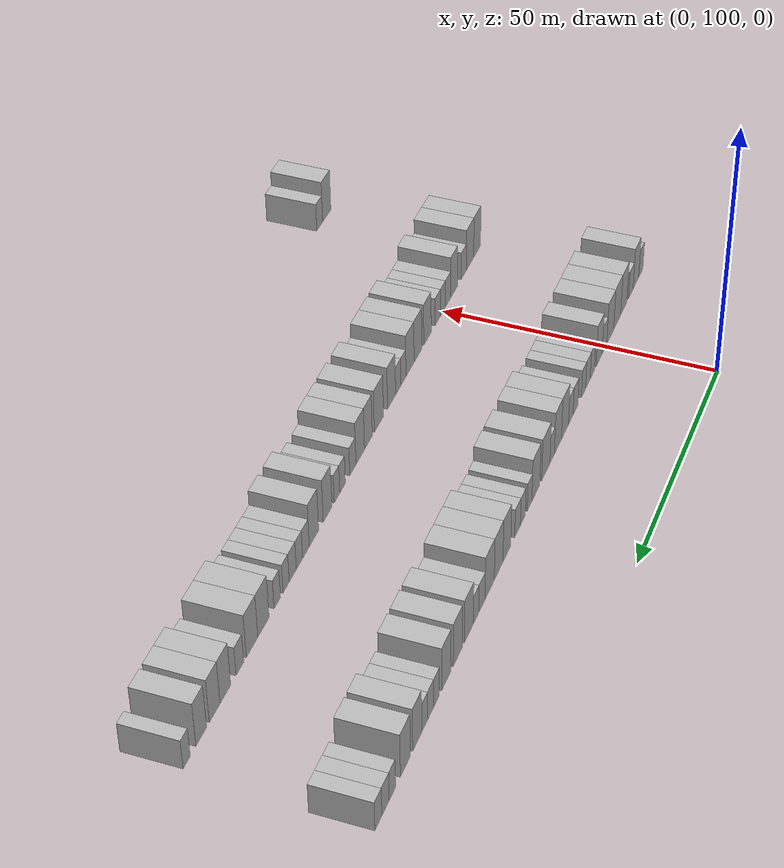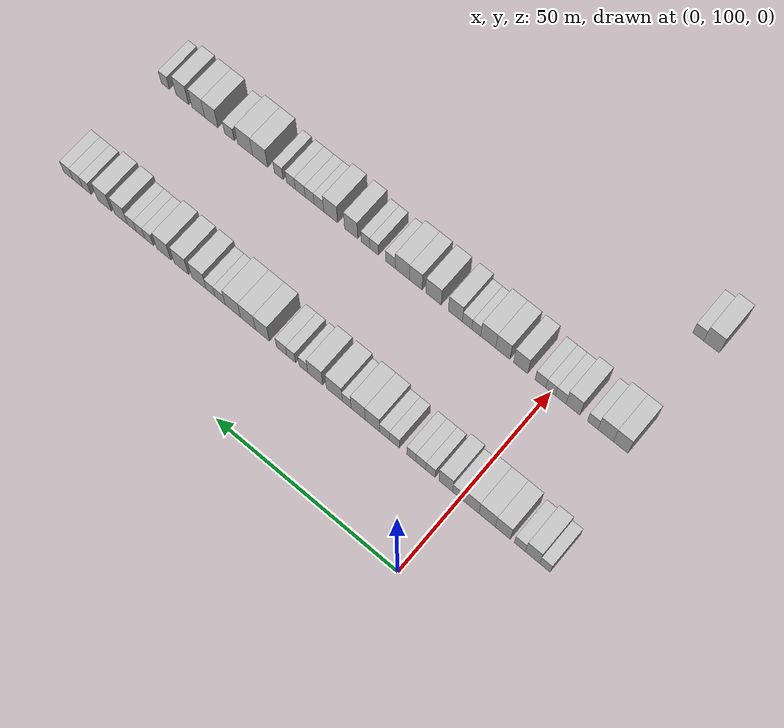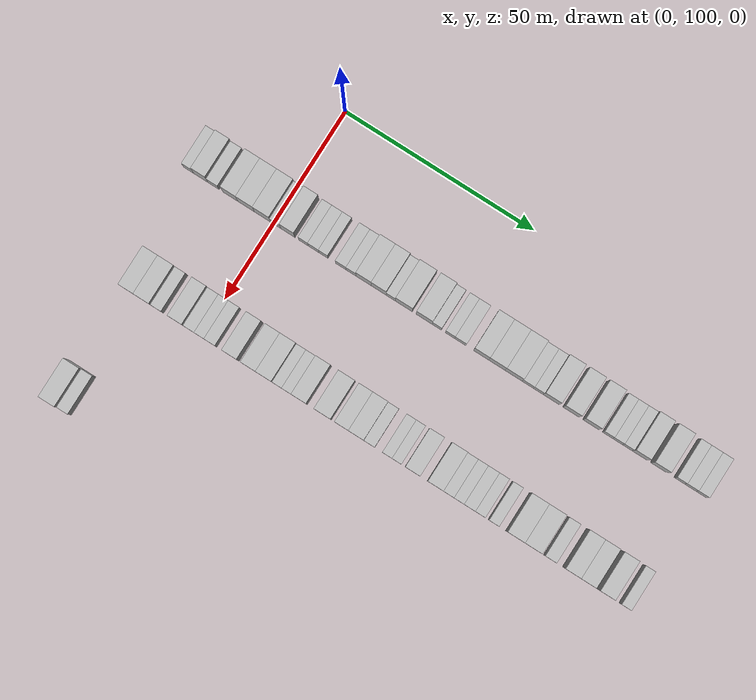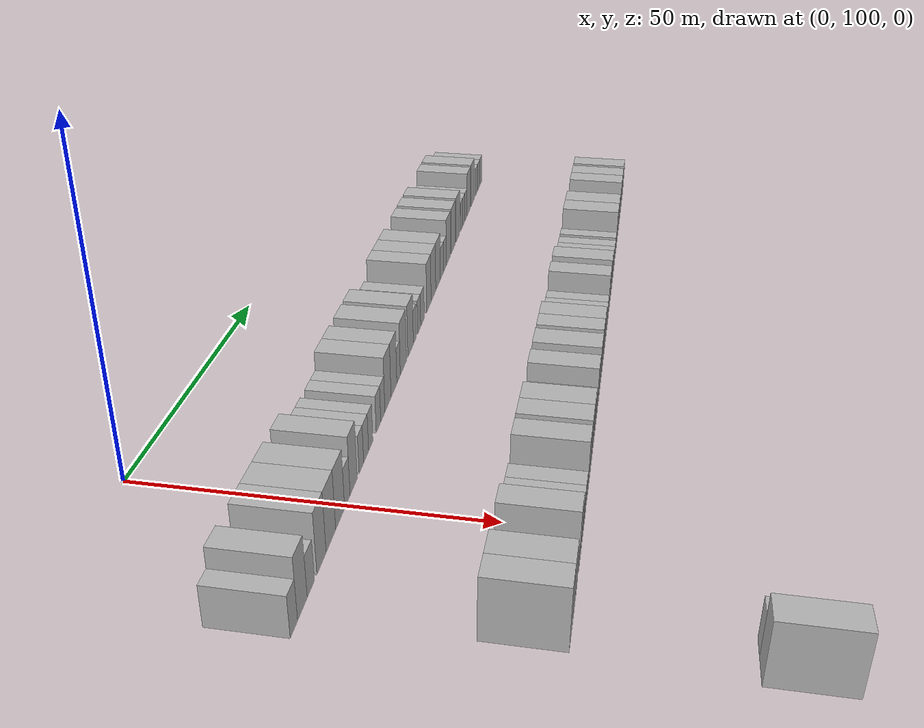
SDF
<sdf version="1.6">
 <world name="default">
  <model name="building_136">
   <static>1</static>
   <pose>25.0000 77.5912 0 0.000000 0.000000 0.000000</pose>
   <link name="link">
    <pose>0 0 3.00 0 0 0</pose>
    <collision name="collision"><geometry><box><size>10.0000 2.7581 6.0000</size></box></geometry></collision>
    <visual name="visual">
     <cast_shadows>0</cast_shadows>
     <geometry><box><size>10.0000 2.7581 6.0000</size></box></geometry>
     <material>
      <script>
       <uri>model://HANNAS_wall/materials/scripts</uri>
       <uri>model://HANNAS_wall/materials/textures</uri>
       <name>vrc/HANNAS_wall</name>
      </script>
     </material>
    </visual>
   </link>
  </model>
  <model name="building_137">
   <static>1</static>
   <pose>25.0000 80.8416 0 0.000000 0.000000 0.000000</pose>
   <link name="link">
    <pose>0 0 4.50 0 0 0</pose>
    <collision name="collision"><geometry><box><size>10.0000 3.7425 9.0000</size></box></geometry></collision>
    <visual name="visual">
     <cast_shadows>0</cast_shadows>
     <geometry><box><size>10.0000 3.7425 9.0000</size></box></geometry>
     <material>
      <script>
       <uri>model://HANNAS_wall/materials/scripts</uri>
       <uri>model://HANNAS_wall/materials/textures</uri>
       <name>vrc/HANNAS_wall</name>
      </script>
     </material>
    </visual>
   </link>
  </model>
  <model name="building_138">
   <static>1</static>
   <pose>25.0000 84.1887 0 0.000000 0.000000 0.000000</pose>
   <link name="link">
    <pose>0 0 3.00 0 0 0</pose>
    <collision name="collision"><geometry><box><size>10.0000 2.9517 6.0000</size></box></geometry></collision>
    <visual name="visual">
     <cast_shadows>0</cast_shadows>
     <geometry><box><size>10.0000 2.9517 6.0000</size></box></geometry>
     <material>
      <script>
       <uri>model://HANNAS_wall/materials/scripts</uri>
       <uri>model://HANNAS_wall/materials/textures</uri>
       <name>vrc/HANNAS_wall</name>
      </script>
     </material>
    </visual>
   </link>
  </model>
  <model name="building_139">
   <static>1</static>
   <pose>25.0000 88.6611 0 0.000000 0.000000 0.000000</pose>
   <link name="link">
    <pose>0 0 4.50 0 0 0</pose>
    <collision name="collision"><geometry><box><size>10.0000 3.9932 9.0000</size></box></geometry></collision>
    <visual name="visual">
     <cast_shadows>0</cast_shadows>
     <geometry><box><size>10.0000 3.9932 9.0000</size></box></geometry>
     <material>
      <script>
       <uri>model://HANNAS_wall/materials/scripts</uri>
       <uri>model://HANNAS_wall/materials/textures</uri>
       <name>vrc/HANNAS_wall</name>
      </script>
     </material>
    </visual>
   </link>
  </model>
  <model name="building_140">
   <static>1</static>
   <pose>25.0000 92.8406 0 0.000000 0.000000 0.000000</pose>
   <link name="link">
    <pose>0 0 4.50 0 0 0</pose>
    <collision name="collision"><geometry><box><size>10.0000 4.3657 9.0000</size></box></geometry></collision>
    <visual name="visual">
     <cast_shadows>0</cast_shadows>
     <geometry><box><size>10.0000 4.3657 9.0000</size></box></geometry>
     <material>
      <script>
       <uri>model://HANNAS_wall/materials/scripts</uri>
       <uri>model://HANNAS_wall/materials/textures</uri>
       <name>vrc/HANNAS_wall</name>
      </script>
     </material>
    </visual>
   </link>
  </model>
  <model name="building_141">
   <static>1</static>
   <pose>25.0000 97.1631 0 0.000000 0.000000 0.000000</pose>
   <link name="link">
    <pose>0 0 4.50 0 0 0</pose>
    <collision name="collision"><geometry><box><size>10.0000 4.2792 9.0000</size></box></geometry></collision>
    <visual name="visual">
     <cast_shadows>0</cast_shadows>
     <geometry><box><size>10.0000 4.2792 9.0000</size></box></geometry>
     <material>
      <script>
       <uri>model://HANNAS_wall/materials/scripts</uri>
       <uri>model://HANNAS_wall/materials/textures</uri>
       <name>vrc/HANNAS_wall</name>
      </script>
     </material>
    </visual>
   </link>
  </model>
  <model name="building_142">
   <static>1</static>
   <pose>25.0000 100.6852 0 0.000000 0.000000 0.000000</pose>
   <link name="link">
    <pose>0 0 3.00 0 0 0</pose>
    <collision name="collision"><geometry><box><size>10.0000 2.7650 6.0000</size></box></geometry></collision>
    <visual name="visual">
     <cast_shadows>0</cast_shadows>
     <geometry><box><size>10.0000 2.7650 6.0000</size></box></geometry>
     <material>
      <script>
       <uri>model://HANNAS_wall/materials/scripts</uri>
       <uri>model://HANNAS_wall/materials/textures</uri>
       <name>vrc/HANNAS_wall</name>
      </script>
     </material>
    </visual>
   </link>
  </model>
  <model name="building_143">
   <static>1</static>
   <pose>25.0000 103.9234 0 0.000000 0.000000 0.000000</pose>
   <link name="link">
    <pose>0 0 4.50 0 0 0</pose>
    <collision name="collision"><geometry><box><size>10.0000 3.7115 9.0000</size></box></geometry></collision>
    <visual name="visual">
     <cast_shadows>0</cast_shadows>
     <geometry><box><size>10.0000 3.7115 9.0000</size></box></geometry>
     <material>
      <script>
       <uri>model://HANNAS_wall/materials/scripts</uri>
       <uri>model://HANNAS_wall/materials/textures</uri>
       <name>vrc/HANNAS_wall</name>
      </script>
     </material>
    </visual>
   </link>
  </model>
  <model name="building_144">
   <static>1</static>
   <pose>25.0000 108.0276 0 0.000000 0.000000 0.000000</pose>
   <link name="link">
    <pose>0 0 3.00 0 0 0</pose>
    <collision name="collision"><geometry><box><size>10.0000 2.4969 6.0000</size></box></geometry></collision>
    <visual name="visual">
     <cast_shadows>0</cast_shadows>
     <geometry><box><size>10.0000 2.4969 6.0000</size></box></geometry>
     <material>
      <script>
       <uri>model://HANNAS_wall/materials/scripts</uri>
       <uri>model://HANNAS_wall/materials/textures</uri>
       <name>vrc/HANNAS_wall</name>
      </script>
     </material>
    </visual>
   </link>
  </model>
  <model name="building_145">
   <static>1</static>
   <pose>25.0000 110.6814 0 0.000000 0.000000 0.000000</pose>
   <link name="link">
    <pose>0 0 3.00 0 0 0</pose>
    <collision name="collision"><geometry><box><size>10.0000 2.8107 6.0000</size></box></geometry></collision>
    <visual name="visual">
     <cast_shadows>0</cast_shadows>
     <geometry><box><size>10.0000 2.8107 6.0000</size></box></geometry>
     <material>
      <script>
       <uri>model://HANNAS_wall/materials/scripts</uri>
       <uri>model://HANNAS_wall/materials/textures</uri>
       <name>vrc/HANNAS_wall</name>
      </script>
     </material>
    </visual>
   </link>
  </model>
  <model name="building_146">
   <static>1</static>
   <pose>25.0000 113.3016 0 0.000000 0.000000 0.000000</pose>
   <link name="link">
    <pose>0 0 3.00 0 0 0</pose>
    <collision name="collision"><geometry><box><size>10.0000 2.4296 6.0000</size></box></geometry></collision>
    <visual name="visual">
     <cast_shadows>0</cast_shadows>
     <geometry><box><size>10.0000 2.4296 6.0000</size></box></geometry>
     <material>
      <script>
       <uri>model://HANNAS_wall/materials/scripts</uri>
       <uri>model://HANNAS_wall/materials/textures</uri>
       <name>vrc/HANNAS_wall</name>
      </script>
     </material>
    </visual>
   </link>
  </model>
  <model name="building_147">
   <static>1</static>
   <pose>25.0000 117.9025 0 0.000000 0.000000 0.000000</pose>
   <link name="link">
    <pose>0 0 3.00 0 0 0</pose>
    <collision name="collision"><geometry><box><size>10.0000 2.7722 6.0000</size></box></geometry></collision>
    <visual name="visual">
     <cast_shadows>0</cast_shadows>
     <geometry><box><size>10.0000 2.7722 6.0000</size></box></geometry>
     <material>
      <script>
       <uri>model://HANNAS_wall/materials/scripts</uri>
       <uri>model://HANNAS_wall/materials/textures</uri>
       <name>vrc/HANNAS_wall</name>
      </script>
     </material>
    </visual>
   </link>
  </model>
  <model name="building_148">
   <static>1</static>
   <pose>25.0000 120.6089 0 0.000000 0.000000 0.000000</pose>
   <link name="link">
    <pose>0 0 3.00 0 0 0</pose>
    <collision name="collision"><geometry><box><size>10.0000 2.6406 6.0000</size></box></geometry></collision>
    <visual name="visual">
     <cast_shadows>0</cast_shadows>
     <geometry><box><size>10.0000 2.6406 6.0000</size></box></geometry>
     <material>
      <script>
       <uri>model://HANNAS_wall/materials/scripts</uri>
       <uri>model://HANNAS_wall/materials/textures</uri>
       <name>vrc/HANNAS_wall</name>
      </script>
     </material>
    </visual>
   </link>
  </model>
  <model name="building_149">
   <static>1</static>
   <pose>25.0000 123.9253 0 0.000000 0.000000 0.000000</pose>
   <link name="link">
    <pose>0 0 4.50 0 0 0</pose>
    <collision name="collision"><geometry><box><size>10.0000 3.9921 9.0000</size></box></geometry></collision>
    <visual name="visual">
     <cast_shadows>0</cast_shadows>
     <geometry><box><size>10.0000 3.9921 9.0000</size></box></geometry>
     <material>
      <script>
       <uri>model://HANNAS_wall/materials/scripts</uri>
       <uri>model://HANNAS_wall/materials/textures</uri>
       <name>vrc/HANNAS_wall</name>
      </script>
     </material>
    </visual>
   </link>
  </model>
  <model name="building_150">
   <static>1</static>
   <pose>25.0000 127.8792 0 0.000000 0.000000 0.000000</pose>
   <link name="link">
    <pose>0 0 4.50 0 0 0</pose>
    <collision name="collision"><geometry><box><size>10.0000 3.9158 9.0000</size></box></geometry></collision>
    <visual name="visual">
     <cast_shadows>0</cast_shadows>
     <geometry><box><size>10.0000 3.9158 9.0000</size></box></geometry>
     <material>
      <script>
       <uri>model://HANNAS_wall/materials/scripts</uri>
       <uri>model://HANNAS_wall/materials/textures</uri>
       <name>vrc/HANNAS_wall</name>
      </script>
     </material>
    </visual>
   </link>
  </model>
  <model name="building_151">
   <static>1</static>
   <pose>25.0000 131.0568 0 0.000000 0.000000 0.000000</pose>
   <link name="link">
    <pose>0 0 3.00 0 0 0</pose>
    <collision name="collision"><geometry><box><size>10.0000 2.4392 6.0000</size></box></geometry></collision>
    <visual name="visual">
     <cast_shadows>0</cast_shadows>
     <geometry><box><size>10.0000 2.4392 6.0000</size></box></geometry>
     <material>
      <script>
       <uri>model://HANNAS_wall/materials/scripts</uri>
       <uri>model://HANNAS_wall/materials/textures</uri>
       <name>vrc/HANNAS_wall</name>
      </script>
     </material>
    </visual>
   </link>
  </model>
  <model name="building_152">
   <static>1</static>
   <pose>25.0000 134.5173 0 0.000000 0.000000 0.000000</pose>
   <link name="link">
    <pose>0 0 4.50 0 0 0</pose>
    <collision name="collision"><geometry><box><size>10.0000 4.4818 9.0000</size></box></geometry></collision>
    <visual name="visual">
     <cast_shadows>0</cast_shadows>
     <geometry><box><size>10.0000 4.4818 9.0000</size></box></geometry>
     <material>
      <script>
       <uri>model://HANNAS_wall/materials/scripts</uri>
       <uri>model://HANNAS_wall/materials/textures</uri>
       <name>vrc/HANNAS_wall</name>
      </script>
     </material>
    </visual>
   </link>
  </model>
  <model name="building_153">
   <static>1</static>
   <pose>25.0000 139.8639 0 0.000000 0.000000 0.000000</pose>
   <link name="link">
    <pose>0 0 4.50 0 0 0</pose>
    <collision name="collision"><geometry><box><size>10.0000 4.2115 9.0000</size></box></geometry></collision>
    <visual name="visual">
     <cast_shadows>0</cast_shadows>
     <geometry><box><size>10.0000 4.2115 9.0000</size></box></geometry>
     <material>
      <script>
       <uri>model://HANNAS_wall/materials/scripts</uri>
       <uri>model://HANNAS_wall/materials/textures</uri>
       <name>vrc/HANNAS_wall</name>
      </script>
     </material>
    </visual>
   </link>
  </model>
  <model name="building_154">
   <static>1</static>
   <pose>25.0000 143.1893 0 0.000000 0.000000 0.000000</pose>
   <link name="link">
    <pose>0 0 3.00 0 0 0</pose>
    <collision name="collision"><geometry><box><size>10.0000 2.4393 6.0000</size></box></geometry></collision>
    <visual name="visual">
     <cast_shadows>0</cast_shadows>
     <geometry><box><size>10.0000 2.4393 6.0000</size></box></geometry>
     <material>
      <script>
       <uri>model://HANNAS_wall/materials/scripts</uri>
       <uri>model://HANNAS_wall/materials/textures</uri>
       <name>vrc/HANNAS_wall</name>
      </script>
     </material>
    </visual>
   </link>
  </model>
  <model name="building_155">
   <static>1</static>
   <pose>25.0000 146.6514 0 0.000000 0.000000 0.000000</pose>
   <link name="link">
    <pose>0 0 3.00 0 0 0</pose>
    <collision name="collision"><geometry><box><size>10.0000 2.4848 6.0000</size></box></geometry></collision>
    <visual name="visual">
     <cast_shadows>0</cast_shadows>
     <geometry><box><size>10.0000 2.4848 6.0000</size></box></geometry>
     <material>
      <script>
       <uri>model://HANNAS_wall/materials/scripts</uri>
       <uri>model://HANNAS_wall/materials/textures</uri>
       <name>vrc/HANNAS_wall</name>
      </script>
     </material>
    </visual>
   </link>
  </model>
  <model name="building_156">
   <static>1</static>
   <pose>25.0000 149.3820 0 0.000000 0.000000 0.000000</pose>
   <link name="link">
    <pose>0 0 3.00 0 0 0</pose>
    <collision name="collision"><geometry><box><size>10.0000 2.9763 6.0000</size></box></geometry></collision>
    <visual name="visual">
     <cast_shadows>0</cast_shadows>
     <geometry><box><size>10.0000 2.9763 6.0000</size></box></geometry>
     <material>
      <script>
       <uri>model://HANNAS_wall/materials/scripts</uri>
       <uri>model://HANNAS_wall/materials/textures</uri>
       <name>vrc/HANNAS_wall</name>
      </script>
     </material>
    </visual>
   </link>
  </model>
  <model name="building_157">
   <static>1</static>
   <pose>25.0000 154.8420 0 0.000000 0.000000 0.000000</pose>
   <link name="link">
    <pose>0 0 4.50 0 0 0</pose>
    <collision name="collision"><geometry><box><size>10.0000 3.9438 9.0000</size></box></geometry></collision>
    <visual name="visual">
     <cast_shadows>0</cast_shadows>
     <geometry><box><size>10.0000 3.9438 9.0000</size></box></geometry>
     <material>
      <script>
       <uri>model://HANNAS_wall/materials/scripts</uri>
       <uri>model://HANNAS_wall/materials/textures</uri>
       <name>vrc/HANNAS_wall</name>
      </script>
     </material>
    </visual>
   </link>
  </model>
  <model name="building_158">
   <static>1</static>
   <pose>25.0000 158.9599 0 0.000000 0.000000 0.000000</pose>
   <link name="link">
    <pose>0 0 4.50 0 0 0</pose>
    <collision name="collision"><geometry><box><size>10.0000 4.2918 9.0000</size></box></geometry></collision>
    <visual name="visual">
     <cast_shadows>0</cast_shadows>
     <geometry><box><size>10.0000 4.2918 9.0000</size></box></geometry>
     <material>
      <script>
       <uri>model://HANNAS_wall/materials/scripts</uri>
       <uri>model://HANNAS_wall/materials/textures</uri>
       <name>vrc/HANNAS_wall</name>
      </script>
     </material>
    </visual>
   </link>
  </model>
  <model name="building_159">
   <static>1</static>
   <pose>25.0000 163.3446 0 0.000000 0.000000 0.000000</pose>
   <link name="link">
    <pose>0 0 4.50 0 0 0</pose>
    <collision name="collision"><geometry><box><size>10.0000 4.4777 9.0000</size></box></geometry></collision>
    <visual name="visual">
     <cast_shadows>0</cast_shadows>
     <geometry><box><size>10.0000 4.4777 9.0000</size></box></geometry>
     <material>
      <script>
       <uri>model://HANNAS_wall/materials/scripts</uri>
       <uri>model://HANNAS_wall/materials/textures</uri>
       <name>vrc/HANNAS_wall</name>
      </script>
     </material>
    </visual>
   </link>
  </model>
  <model name="building_160">
   <static>1</static>
   <pose>25.0000 167.0753 0 0.000000 0.000000 0.000000</pose>
   <link name="link">
    <pose>0 0 3.00 0 0 0</pose>
    <collision name="collision"><geometry><box><size>10.0000 2.9837 6.0000</size></box></geometry></collision>
    <visual name="visual">
     <cast_shadows>0</cast_shadows>
     <geometry><box><size>10.0000 2.9837 6.0000</size></box></geometry>
     <material>
      <script>
       <uri>model://HANNAS_wall/materials/scripts</uri>
       <uri>model://HANNAS_wall/materials/textures</uri>
       <name>vrc/HANNAS_wall</name>
      </script>
     </material>
    </visual>
   </link>
  </model>
  <model name="building_161">
   <static>1</static>
   <pose>25.0000 169.8579 0 0.000000 0.000000 0.000000</pose>
   <link name="link">
    <pose>0 0 3.00 0 0 0</pose>
    <collision name="collision"><geometry><box><size>10.0000 2.5815 6.0000</size></box></geometry></collision>
    <visual name="visual">
     <cast_shadows>0</cast_shadows>
     <geometry><box><size>10.0000 2.5815 6.0000</size></box></geometry>
     <material>
      <script>
       <uri>model://HANNAS_wall/materials/scripts</uri>
       <uri>model://HANNAS_wall/materials/textures</uri>
       <name>vrc/HANNAS_wall</name>
      </script>
     </material>
    </visual>
   </link>
  </model>
  <model name="building_162">
   <static>1</static>
   <pose>25.0000 173.2406 0 0.000000 0.000000 0.000000</pose>
   <link name="link">
    <pose>0 0 4.50 0 0 0</pose>
    <collision name="collision"><geometry><box><size>10.0000 4.1837 9.0000</size></box></geometry></collision>
    <visual name="visual">
     <cast_shadows>0</cast_shadows>
     <geometry><box><size>10.0000 4.1837 9.0000</size></box></geometry>
     <material>
      <script>
       <uri>model://HANNAS_wall/materials/scripts</uri>
       <uri>model://HANNAS_wall/materials/textures</uri>
       <name>vrc/HANNAS_wall</name>
      </script>
     </material>
    </visual>
   </link>
  </model>
  <model name="building_163">
   <static>1</static>
   <pose>25.0000 178.4339 0 0.000000 0.000000 0.000000</pose>
   <link name="link">
    <pose>0 0 4.50 0 0 0</pose>
    <collision name="collision"><geometry><box><size>10.0000 4.2030 9.0000</size></box></geometry></collision>
    <visual name="visual">
     <cast_shadows>0</cast_shadows>
     <geometry><box><size>10.0000 4.2030 9.0000</size></box></geometry>
     <material>
      <script>
       <uri>model://HANNAS_wall/materials/scripts</uri>
       <uri>model://HANNAS_wall/materials/textures</uri>
       <name>vrc/HANNAS_wall</name>
      </script>
     </material>
    </visual>
   </link>
  </model>
  <model name="building_164">
   <static>1</static>
   <pose>25.0000 183.6283 0 0.000000 0.000000 0.000000</pose>
   <link name="link">
    <pose>0 0 4.50 0 0 0</pose>
    <collision name="collision"><geometry><box><size>10.0000 4.1857 9.0000</size></box></geometry></collision>
    <visual name="visual">
     <cast_shadows>0</cast_shadows>
     <geometry><box><size>10.0000 4.1857 9.0000</size></box></geometry>
     <material>
      <script>
       <uri>model://HANNAS_wall/materials/scripts</uri>
       <uri>model://HANNAS_wall/materials/textures</uri>
       <name>vrc/HANNAS_wall</name>
      </script>
     </material>
    </visual>
   </link>
  </model>
  <model name="building_165">
   <static>1</static>
   <pose>25.0000 187.9813 0 0.000000 0.000000 0.000000</pose>
   <link name="link">
    <pose>0 0 3.00 0 0 0</pose>
    <collision name="collision"><geometry><box><size>10.0000 2.5204 6.0000</size></box></geometry></collision>
    <visual name="visual">
     <cast_shadows>0</cast_shadows>
     <geometry><box><size>10.0000 2.5204 6.0000</size></box></geometry>
     <material>
      <script>
       <uri>model://HANNAS_wall/materials/scripts</uri>
       <uri>model://HANNAS_wall/materials/textures</uri>
       <name>vrc/HANNAS_wall</name>
      </script>
     </material>
    </visual>
   </link>
  </model>
  <model name="building_166">
   <static>1</static>
   <pose>25.0000 190.5434 0 0.000000 0.000000 0.000000</pose>
   <link name="link">
    <pose>0 0 3.00 0 0 0</pose>
    <collision name="collision"><geometry><box><size>10.0000 2.6036 6.0000</size></box></geometry></collision>
    <visual name="visual">
     <cast_shadows>0</cast_shadows>
     <geometry><box><size>10.0000 2.6036 6.0000</size></box></geometry>
     <material>
      <script>
       <uri>model://HANNAS_wall/materials/scripts</uri>
       <uri>model://HANNAS_wall/materials/textures</uri>
       <name>vrc/HANNAS_wall</name>
      </script>
     </material>
    </visual>
   </link>
  </model>
  <model name="building_167">
   <static>1</static>
   <pose>25.0000 193.1243 0 0.000000 0.000000 0.000000</pose>
   <link name="link">
    <pose>0 0 3.00 0 0 0</pose>
    <collision name="collision"><geometry><box><size>10.0000 2.5582 6.0000</size></box></geometry></collision>
    <visual name="visual">
     <cast_shadows>0</cast_shadows>
     <geometry><box><size>10.0000 2.5582 6.0000</size></box></geometry>
     <material>
      <script>
       <uri>model://HANNAS_wall/materials/scripts</uri>
       <uri>model://HANNAS_wall/materials/textures</uri>
       <name>vrc/HANNAS_wall</name>
      </script>
     </material>
    </visual>
   </link>
  </model>
  <model name="building_168">
   <static>1</static>
   <pose>25.0000 196.3502 0 0.000000 0.000000 0.000000</pose>
   <link name="link">
    <pose>0 0 4.50 0 0 0</pose>
    <collision name="collision"><geometry><box><size>10.0000 3.8935 9.0000</size></box></geometry></collision>
    <visual name="visual">
     <cast_shadows>0</cast_shadows>
     <geometry><box><size>10.0000 3.8935 9.0000</size></box></geometry>
     <material>
      <script>
       <uri>model://HANNAS_wall/materials/scripts</uri>
       <uri>model://HANNAS_wall/materials/textures</uri>
       <name>vrc/HANNAS_wall</name>
      </script>
     </material>
    </visual>
   </link>
  </model>
  <model name="building_169">
   <static>1</static>
   <pose>25.0000 201.3693 0 0.000000 0.000000 0.000000</pose>
   <link name="link">
    <pose>0 0 4.50 0 0 0</pose>
    <collision name="collision"><geometry><box><size>10.0000 4.1447 9.0000</size></box></geometry></collision>
    <visual name="visual">
     <cast_shadows>0</cast_shadows>
     <geometry><box><size>10.0000 4.1447 9.0000</size></box></geometry>
     <material>
      <script>
       <uri>model://HANNAS_wall/materials/scripts</uri>
       <uri>model://HANNAS_wall/materials/textures</uri>
       <name>vrc/HANNAS_wall</name>
      </script>
     </material>
    </visual>
   </link>
  </model>
  <model name="building_170">
   <static>1</static>
   <pose>25.0000 206.7537 0 0.000000 0.000000 0.000000</pose>
   <link name="link">
    <pose>0 0 3.00 0 0 0</pose>
    <collision name="collision"><geometry><box><size>10.0000 2.6243 6.0000</size></box></geometry></collision>
    <visual name="visual">
     <cast_shadows>0</cast_shadows>
     <geometry><box><size>10.0000 2.6243 6.0000</size></box></geometry>
     <material>
      <script>
       <uri>model://HANNAS_wall/materials/scripts</uri>
       <uri>model://HANNAS_wall/materials/textures</uri>
       <name>vrc/HANNAS_wall</name>
      </script>
     </material>
    </visual>
   </link>
  </model>
  <model name="building_171">
   <static>1</static>
   <pose>25.0000 209.5359 0 0.000000 0.000000 0.000000</pose>
   <link name="link">
    <pose>0 0 3.00 0 0 0</pose>
    <collision name="collision"><geometry><box><size>10.0000 2.9401 6.0000</size></box></geometry></collision>
    <visual name="visual">
     <cast_shadows>0</cast_shadows>
     <geometry><box><size>10.0000 2.9401 6.0000</size></box></geometry>
     <material>
      <script>
       <uri>model://HANNAS_wall/materials/scripts</uri>
       <uri>model://HANNAS_wall/materials/textures</uri>
       <name>vrc/HANNAS_wall</name>
      </script>
     </material>
    </visual>
   </link>
  </model>
  <model name="building_172">
   <static>1</static>
   <pose>25.0000 212.4015 0 0.000000 0.000000 0.000000</pose>
   <link name="link">
    <pose>0 0 3.00 0 0 0</pose>
    <collision name="collision"><geometry><box><size>10.0000 2.7912 6.0000</size></box></geometry></collision>
    <visual name="visual">
     <cast_shadows>0</cast_shadows>
     <geometry><box><size>10.0000 2.7912 6.0000</size></box></geometry>
     <material>
      <script>
       <uri>model://HANNAS_wall/materials/scripts</uri>
       <uri>model://HANNAS_wall/materials/textures</uri>
       <name>vrc/HANNAS_wall</name>
      </script>
     </material>
    </visual>
   </link>
  </model>
  <model name="building_369">
   <static>1</static>
   <pose>55.0000 81.3172 0 0.000000 0.000000 0.000000</pose>
   <link name="link">
    <pose>0 0 4.50 0 0 0</pose>
    <collision name="collision"><geometry><box><size>10.0000 3.9108 9.0000</size></box></geometry></collision>
    <visual name="visual">
     <cast_shadows>0</cast_shadows>
     <geometry><box><size>10.0000 3.9108 9.0000</size></box></geometry>
     <material>
      <script>
       <uri>model://HANNAS_wall/materials/scripts</uri>
       <uri>model://HANNAS_wall/materials/textures</uri>
       <name>vrc/HANNAS_wall</name>
      </script>
     </material>
    </visual>
   </link>
  </model>
  <model name="building_370">
   <static>1</static>
   <pose>55.0000 85.3254 0 0.000000 0.000000 0.000000</pose>
   <link name="link">
    <pose>0 0 4.50 0 0 0</pose>
    <collision name="collision"><geometry><box><size>10.0000 4.1056 9.0000</size></box></geometry></collision>
    <visual name="visual">
     <cast_shadows>0</cast_shadows>
     <geometry><box><size>10.0000 4.1056 9.0000</size></box></geometry>
     <material>
      <script>
       <uri>model://HANNAS_wall/materials/scripts</uri>
       <uri>model://HANNAS_wall/materials/textures</uri>
       <name>vrc/HANNAS_wall</name>
      </script>
     </material>
    </visual>
   </link>
  </model>
  <model name="building_371">
   <static>1</static>
   <pose>55.0000 88.7721 0 0.000000 0.000000 0.000000</pose>
   <link name="link">
    <pose>0 0 3.00 0 0 0</pose>
    <collision name="collision"><geometry><box><size>10.0000 2.7879 6.0000</size></box></geometry></collision>
    <visual name="visual">
     <cast_shadows>0</cast_shadows>
     <geometry><box><size>10.0000 2.7879 6.0000</size></box></geometry>
     <material>
      <script>
       <uri>model://HANNAS_wall/materials/scripts</uri>
       <uri>model://HANNAS_wall/materials/textures</uri>
       <name>vrc/HANNAS_wall</name>
      </script>
     </material>
    </visual>
   </link>
  </model>
  <model name="building_372">
   <static>1</static>
   <pose>55.0000 94.0447 0 0.000000 0.000000 0.000000</pose>
   <link name="link">
    <pose>0 0 4.50 0 0 0</pose>
    <collision name="collision"><geometry><box><size>10.0000 3.7572 9.0000</size></box></geometry></collision>
    <visual name="visual">
     <cast_shadows>0</cast_shadows>
     <geometry><box><size>10.0000 3.7572 9.0000</size></box></geometry>
     <material>
      <script>
       <uri>model://HANNAS_wall/materials/scripts</uri>
       <uri>model://HANNAS_wall/materials/textures</uri>
       <name>vrc/HANNAS_wall</name>
      </script>
     </material>
    </visual>
   </link>
  </model>
  <model name="building_373">
   <static>1</static>
   <pose>55.0000 97.3568 0 0.000000 0.000000 0.000000</pose>
   <link name="link">
    <pose>0 0 3.00 0 0 0</pose>
    <collision name="collision"><geometry><box><size>10.0000 2.8671 6.0000</size></box></geometry></collision>
    <visual name="visual">
     <cast_shadows>0</cast_shadows>
     <geometry><box><size>10.0000 2.8671 6.0000</size></box></geometry>
     <material>
      <script>
       <uri>model://HANNAS_wall/materials/scripts</uri>
       <uri>model://HANNAS_wall/materials/textures</uri>
       <name>vrc/HANNAS_wall</name>
      </script>
     </material>
    </visual>
   </link>
  </model>
  <model name="building_374">
   <static>1</static>
   <pose>55.0000 100.0828 0 0.000000 0.000000 0.000000</pose>
   <link name="link">
    <pose>0 0 3.00 0 0 0</pose>
    <collision name="collision"><geometry><box><size>10.0000 2.5848 6.0000</size></box></geometry></collision>
    <visual name="visual">
     <cast_shadows>0</cast_shadows>
     <geometry><box><size>10.0000 2.5848 6.0000</size></box></geometry>
     <material>
      <script>
       <uri>model://HANNAS_wall/materials/scripts</uri>
       <uri>model://HANNAS_wall/materials/textures</uri>
       <name>vrc/HANNAS_wall</name>
      </script>
     </material>
    </visual>
   </link>
  </model>
  <model name="building_375">
   <static>1</static>
   <pose>55.0000 102.8152 0 0.000000 0.000000 0.000000</pose>
   <link name="link">
    <pose>0 0 3.00 0 0 0</pose>
    <collision name="collision"><geometry><box><size>10.0000 2.8801 6.0000</size></box></geometry></collision>
    <visual name="visual">
     <cast_shadows>0</cast_shadows>
     <geometry><box><size>10.0000 2.8801 6.0000</size></box></geometry>
     <material>
      <script>
       <uri>model://HANNAS_wall/materials/scripts</uri>
       <uri>model://HANNAS_wall/materials/textures</uri>
       <name>vrc/HANNAS_wall</name>
      </script>
     </material>
    </visual>
   </link>
  </model>
  <model name="building_376">
   <static>1</static>
   <pose>55.0000 108.1990 0 0.000000 0.000000 0.000000</pose>
   <link name="link">
    <pose>0 0 4.50 0 0 0</pose>
    <collision name="collision"><geometry><box><size>10.0000 3.8874 9.0000</size></box></geometry></collision>
    <visual name="visual">
     <cast_shadows>0</cast_shadows>
     <geometry><box><size>10.0000 3.8874 9.0000</size></box></geometry>
     <material>
      <script>
       <uri>model://HANNAS_wall/materials/scripts</uri>
       <uri>model://HANNAS_wall/materials/textures</uri>
       <name>vrc/HANNAS_wall</name>
      </script>
     </material>
    </visual>
   </link>
  </model>
  <model name="building_377">
   <static>1</static>
   <pose>55.0000 113.0931 0 0.000000 0.000000 0.000000</pose>
   <link name="link">
    <pose>0 0 4.50 0 0 0</pose>
    <collision name="collision"><geometry><box><size>10.0000 3.9008 9.0000</size></box></geometry></collision>
    <visual name="visual">
     <cast_shadows>0</cast_shadows>
     <geometry><box><size>10.0000 3.9008 9.0000</size></box></geometry>
     <material>
      <script>
       <uri>model://HANNAS_wall/materials/scripts</uri>
       <uri>model://HANNAS_wall/materials/textures</uri>
       <name>vrc/HANNAS_wall</name>
      </script>
     </material>
    </visual>
   </link>
  </model>
  <model name="building_378">
   <static>1</static>
   <pose>55.0000 117.1010 0 0.000000 0.000000 0.000000</pose>
   <link name="link">
    <pose>0 0 4.50 0 0 0</pose>
    <collision name="collision"><geometry><box><size>10.0000 4.1150 9.0000</size></box></geometry></collision>
    <visual name="visual">
     <cast_shadows>0</cast_shadows>
     <geometry><box><size>10.0000 4.1150 9.0000</size></box></geometry>
     <material>
      <script>
       <uri>model://HANNAS_wall/materials/scripts</uri>
       <uri>model://HANNAS_wall/materials/textures</uri>
       <name>vrc/HANNAS_wall</name>
      </script>
     </material>
    </visual>
   </link>
  </model>
  <model name="building_379">
   <static>1</static>
   <pose>55.0000 120.4033 0 0.000000 0.000000 0.000000</pose>
   <link name="link">
    <pose>0 0 3.00 0 0 0</pose>
    <collision name="collision"><geometry><box><size>10.0000 2.4896 6.0000</size></box></geometry></collision>
    <visual name="visual">
     <cast_shadows>0</cast_shadows>
     <geometry><box><size>10.0000 2.4896 6.0000</size></box></geometry>
     <material>
      <script>
       <uri>model://HANNAS_wall/materials/scripts</uri>
       <uri>model://HANNAS_wall/materials/textures</uri>
       <name>vrc/HANNAS_wall</name>
      </script>
     </material>
    </visual>
   </link>
  </model>
  <model name="building_380">
   <static>1</static>
   <pose>55.0000 122.9510 0 0.000000 0.000000 0.000000</pose>
   <link name="link">
    <pose>0 0 3.00 0 0 0</pose>
    <collision name="collision"><geometry><box><size>10.0000 2.6057 6.0000</size></box></geometry></collision>
    <visual name="visual">
     <cast_shadows>0</cast_shadows>
     <geometry><box><size>10.0000 2.6057 6.0000</size></box></geometry>
     <material>
      <script>
       <uri>model://HANNAS_wall/materials/scripts</uri>
       <uri>model://HANNAS_wall/materials/textures</uri>
       <name>vrc/HANNAS_wall</name>
      </script>
     </material>
    </visual>
   </link>
  </model>
  <model name="building_381">
   <static>1</static>
   <pose>55.0000 126.2072 0 0.000000 0.000000 0.000000</pose>
   <link name="link">
    <pose>0 0 4.50 0 0 0</pose>
    <collision name="collision"><geometry><box><size>10.0000 3.9068 9.0000</size></box></geometry></collision>
    <visual name="visual">
     <cast_shadows>0</cast_shadows>
     <geometry><box><size>10.0000 3.9068 9.0000</size></box></geometry>
     <material>
      <script>
       <uri>model://HANNAS_wall/materials/scripts</uri>
       <uri>model://HANNAS_wall/materials/textures</uri>
       <name>vrc/HANNAS_wall</name>
      </script>
     </material>
    </visual>
   </link>
  </model>
  <model name="building_382">
   <static>1</static>
   <pose>55.0000 132.3265 0 0.000000 0.000000 0.000000</pose>
   <link name="link">
    <pose>0 0 4.50 0 0 0</pose>
    <collision name="collision"><geometry><box><size>10.0000 4.3317 9.0000</size></box></geometry></collision>
    <visual name="visual">
     <cast_shadows>0</cast_shadows>
     <geometry><box><size>10.0000 4.3317 9.0000</size></box></geometry>
     <material>
      <script>
       <uri>model://HANNAS_wall/materials/scripts</uri>
       <uri>model://HANNAS_wall/materials/textures</uri>
       <name>vrc/HANNAS_wall</name>
      </script>
     </material>
    </visual>
   </link>
  </model>
  <model name="building_383">
   <static>1</static>
   <pose>55.0000 137.2972 0 0.000000 0.000000 0.000000</pose>
   <link name="link">
    <pose>0 0 4.50 0 0 0</pose>
    <collision name="collision"><geometry><box><size>10.0000 3.6095 9.0000</size></box></geometry></collision>
    <visual name="visual">
     <cast_shadows>0</cast_shadows>
     <geometry><box><size>10.0000 3.6095 9.0000</size></box></geometry>
     <material>
      <script>
       <uri>model://HANNAS_wall/materials/scripts</uri>
       <uri>model://HANNAS_wall/materials/textures</uri>
       <name>vrc/HANNAS_wall</name>
      </script>
     </material>
    </visual>
   </link>
  </model>
  <model name="building_384">
   <static>1</static>
   <pose>55.0000 141.0899 0 0.000000 0.000000 0.000000</pose>
   <link name="link">
    <pose>0 0 4.50 0 0 0</pose>
    <collision name="collision"><geometry><box><size>10.0000 3.9760 9.0000</size></box></geometry></collision>
    <visual name="visual">
     <cast_shadows>0</cast_shadows>
     <geometry><box><size>10.0000 3.9760 9.0000</size></box></geometry>
     <material>
      <script>
       <uri>model://HANNAS_wall/materials/scripts</uri>
       <uri>model://HANNAS_wall/materials/textures</uri>
       <name>vrc/HANNAS_wall</name>
      </script>
     </material>
    </visual>
   </link>
  </model>
  <model name="building_385">
   <static>1</static>
   <pose>55.0000 144.4870 0 0.000000 0.000000 0.000000</pose>
   <link name="link">
    <pose>0 0 3.00 0 0 0</pose>
    <collision name="collision"><geometry><box><size>10.0000 2.8182 6.0000</size></box></geometry></collision>
    <visual name="visual">
     <cast_shadows>0</cast_shadows>
     <geometry><box><size>10.0000 2.8182 6.0000</size></box></geometry>
     <material>
      <script>
       <uri>model://HANNAS_wall/materials/scripts</uri>
       <uri>model://HANNAS_wall/materials/textures</uri>
       <name>vrc/HANNAS_wall</name>
      </script>
     </material>
    </visual>
   </link>
  </model>
  <model name="building_386">
   <static>1</static>
   <pose>55.0000 149.1460 0 0.000000 0.000000 0.000000</pose>
   <link name="link">
    <pose>0 0 3.00 0 0 0</pose>
    <collision name="collision"><geometry><box><size>10.0000 2.4997 6.0000</size></box></geometry></collision>
    <visual name="visual">
     <cast_shadows>0</cast_shadows>
     <geometry><box><size>10.0000 2.4997 6.0000</size></box></geometry>
     <material>
      <script>
       <uri>model://HANNAS_wall/materials/scripts</uri>
       <uri>model://HANNAS_wall/materials/textures</uri>
       <name>vrc/HANNAS_wall</name>
      </script>
     </material>
    </visual>
   </link>
  </model>
  <model name="building_387">
   <static>1</static>
   <pose>55.0000 151.6189 0 0.000000 0.000000 0.000000</pose>
   <link name="link">
    <pose>0 0 3.00 0 0 0</pose>
    <collision name="collision"><geometry><box><size>10.0000 2.4462 6.0000</size></box></geometry></collision>
    <visual name="visual">
     <cast_shadows>0</cast_shadows>
     <geometry><box><size>10.0000 2.4462 6.0000</size></box></geometry>
     <material>
      <script>
       <uri>model://HANNAS_wall/materials/scripts</uri>
       <uri>model://HANNAS_wall/materials/textures</uri>
       <name>vrc/HANNAS_wall</name>
      </script>
     </material>
    </visual>
   </link>
  </model>
  <model name="building_388">
   <static>1</static>
   <pose>55.0000 155.7513 0 0.000000 0.000000 0.000000</pose>
   <link name="link">
    <pose>0 0 4.50 0 0 0</pose>
    <collision name="collision"><geometry><box><size>10.0000 3.8187 9.0000</size></box></geometry></collision>
    <visual name="visual">
     <cast_shadows>0</cast_shadows>
     <geometry><box><size>10.0000 3.8187 9.0000</size></box></geometry>
     <material>
      <script>
       <uri>model://HANNAS_wall/materials/scripts</uri>
       <uri>model://HANNAS_wall/materials/textures</uri>
       <name>vrc/HANNAS_wall</name>
      </script>
     </material>
    </visual>
   </link>
  </model>
  <model name="building_389">
   <static>1</static>
   <pose>55.0000 161.6644 0 0.000000 0.000000 0.000000</pose>
   <link name="link">
    <pose>0 0 4.50 0 0 0</pose>
    <collision name="collision"><geometry><box><size>10.0000 4.0075 9.0000</size></box></geometry></collision>
    <visual name="visual">
     <cast_shadows>0</cast_shadows>
     <geometry><box><size>10.0000 4.0075 9.0000</size></box></geometry>
     <material>
      <script>
       <uri>model://HANNAS_wall/materials/scripts</uri>
       <uri>model://HANNAS_wall/materials/textures</uri>
       <name>vrc/HANNAS_wall</name>
      </script>
     </material>
    </visual>
   </link>
  </model>
  <model name="building_390">
   <static>1</static>
   <pose>55.0000 165.0796 0 0.000000 0.000000 0.000000</pose>
   <link name="link">
    <pose>0 0 3.00 0 0 0</pose>
    <collision name="collision"><geometry><box><size>10.0000 2.8228 6.0000</size></box></geometry></collision>
    <visual name="visual">
     <cast_shadows>0</cast_shadows>
     <geometry><box><size>10.0000 2.8228 6.0000</size></box></geometry>
     <material>
      <script>
       <uri>model://HANNAS_wall/materials/scripts</uri>
       <uri>model://HANNAS_wall/materials/textures</uri>
       <name>vrc/HANNAS_wall</name>
      </script>
     </material>
    </visual>
   </link>
  </model>
  <model name="building_391">
   <static>1</static>
   <pose>55.0000 167.8018 0 0.000000 0.000000 0.000000</pose>
   <link name="link">
    <pose>0 0 3.00 0 0 0</pose>
    <collision name="collision"><geometry><box><size>10.0000 2.6217 6.0000</size></box></geometry></collision>
    <visual name="visual">
     <cast_shadows>0</cast_shadows>
     <geometry><box><size>10.0000 2.6217 6.0000</size></box></geometry>
     <material>
      <script>
       <uri>model://HANNAS_wall/materials/scripts</uri>
       <uri>model://HANNAS_wall/materials/textures</uri>
       <name>vrc/HANNAS_wall</name>
      </script>
     </material>
    </visual>
   </link>
  </model>
  <model name="building_392">
   <static>1</static>
   <pose>55.0000 170.5695 0 0.000000 0.000000 0.000000</pose>
   <link name="link">
    <pose>0 0 3.00 0 0 0</pose>
    <collision name="collision"><geometry><box><size>10.0000 2.9137 6.0000</size></box></geometry></collision>
    <visual name="visual">
     <cast_shadows>0</cast_shadows>
     <geometry><box><size>10.0000 2.9137 6.0000</size></box></geometry>
     <material>
      <script>
       <uri>model://HANNAS_wall/materials/scripts</uri>
       <uri>model://HANNAS_wall/materials/textures</uri>
       <name>vrc/HANNAS_wall</name>
      </script>
     </material>
    </visual>
   </link>
  </model>
  <model name="building_393">
   <static>1</static>
   <pose>55.0000 173.3165 0 0.000000 0.000000 0.000000</pose>
   <link name="link">
    <pose>0 0 3.00 0 0 0</pose>
    <collision name="collision"><geometry><box><size>10.0000 2.5803 6.0000</size></box></geometry></collision>
    <visual name="visual">
     <cast_shadows>0</cast_shadows>
     <geometry><box><size>10.0000 2.5803 6.0000</size></box></geometry>
     <material>
      <script>
       <uri>model://HANNAS_wall/materials/scripts</uri>
       <uri>model://HANNAS_wall/materials/textures</uri>
       <name>vrc/HANNAS_wall</name>
      </script>
     </material>
    </visual>
   </link>
  </model>
  <model name="building_394">
   <static>1</static>
   <pose>55.0000 176.9030 0 0.000000 0.000000 0.000000</pose>
   <link name="link">
    <pose>0 0 3.00 0 0 0</pose>
    <collision name="collision"><geometry><box><size>10.0000 2.5927 6.0000</size></box></geometry></collision>
    <visual name="visual">
     <cast_shadows>0</cast_shadows>
     <geometry><box><size>10.0000 2.5927 6.0000</size></box></geometry>
     <material>
      <script>
       <uri>model://HANNAS_wall/materials/scripts</uri>
       <uri>model://HANNAS_wall/materials/textures</uri>
       <name>vrc/HANNAS_wall</name>
      </script>
     </material>
    </visual>
   </link>
  </model>
  <model name="building_395">
   <static>1</static>
   <pose>55.0000 182.4269 0 0.000000 0.000000 0.000000</pose>
   <link name="link">
    <pose>0 0 4.50 0 0 0</pose>
    <collision name="collision"><geometry><box><size>10.0000 4.4551 9.0000</size></box></geometry></collision>
    <visual name="visual">
     <cast_shadows>0</cast_shadows>
     <geometry><box><size>10.0000 4.4551 9.0000</size></box></geometry>
     <material>
      <script>
       <uri>model://HANNAS_wall/materials/scripts</uri>
       <uri>model://HANNAS_wall/materials/textures</uri>
       <name>vrc/HANNAS_wall</name>
      </script>
     </material>
    </visual>
   </link>
  </model>
  <model name="building_396">
   <static>1</static>
   <pose>55.0000 186.8954 0 0.000000 0.000000 0.000000</pose>
   <link name="link">
    <pose>0 0 4.50 0 0 0</pose>
    <collision name="collision"><geometry><box><size>10.0000 4.4818 9.0000</size></box></geometry></collision>
    <visual name="visual">
     <cast_shadows>0</cast_shadows>
     <geometry><box><size>10.0000 4.4818 9.0000</size></box></geometry>
     <material>
      <script>
       <uri>model://HANNAS_wall/materials/scripts</uri>
       <uri>model://HANNAS_wall/materials/textures</uri>
       <name>vrc/HANNAS_wall</name>
      </script>
     </material>
    </visual>
   </link>
  </model>
  <model name="building_397">
   <static>1</static>
   <pose>55.0000 191.6003 0 0.000000 0.000000 0.000000</pose>
   <link name="link">
    <pose>0 0 3.00 0 0 0</pose>
    <collision name="collision"><geometry><box><size>10.0000 2.9281 6.0000</size></box></geometry></collision>
    <visual name="visual">
     <cast_shadows>0</cast_shadows>
     <geometry><box><size>10.0000 2.9281 6.0000</size></box></geometry>
     <material>
      <script>
       <uri>model://HANNAS_wall/materials/scripts</uri>
       <uri>model://HANNAS_wall/materials/textures</uri>
       <name>vrc/HANNAS_wall</name>
      </script>
     </material>
    </visual>
   </link>
  </model>
  <model name="building_398">
   <static>1</static>
   <pose>55.0000 197.0506 0 0.000000 0.000000 0.000000</pose>
   <link name="link">
    <pose>0 0 4.50 0 0 0</pose>
    <collision name="collision"><geometry><box><size>10.0000 3.9724 9.0000</size></box></geometry></collision>
    <visual name="visual">
     <cast_shadows>0</cast_shadows>
     <geometry><box><size>10.0000 3.9724 9.0000</size></box></geometry>
     <material>
      <script>
       <uri>model://HANNAS_wall/materials/scripts</uri>
       <uri>model://HANNAS_wall/materials/textures</uri>
       <name>vrc/HANNAS_wall</name>
      </script>
     </material>
    </visual>
   </link>
  </model>
  <model name="building_399">
   <static>1</static>
   <pose>55.0000 201.0044 0 0.000000 0.000000 0.000000</pose>
   <link name="link">
    <pose>0 0 4.50 0 0 0</pose>
    <collision name="collision"><geometry><box><size>10.0000 3.9353 9.0000</size></box></geometry></collision>
    <visual name="visual">
     <cast_shadows>0</cast_shadows>
     <geometry><box><size>10.0000 3.9353 9.0000</size></box></geometry>
     <material>
      <script>
       <uri>model://HANNAS_wall/materials/scripts</uri>
       <uri>model://HANNAS_wall/materials/textures</uri>
       <name>vrc/HANNAS_wall</name>
      </script>
     </material>
    </visual>
   </link>
  </model>
  <model name="building_400">
   <static>1</static>
   <pose>55.0000 205.9009 0 0.000000 0.000000 0.000000</pose>
   <link name="link">
    <pose>0 0 4.50 0 0 0</pose>
    <collision name="collision"><geometry><box><size>10.0000 3.8577 9.0000</size></box></geometry></collision>
    <visual name="visual">
     <cast_shadows>0</cast_shadows>
     <geometry><box><size>10.0000 3.8577 9.0000</size></box></geometry>
     <material>
      <script>
       <uri>model://HANNAS_wall/materials/scripts</uri>
       <uri>model://HANNAS_wall/materials/textures</uri>
       <name>vrc/HANNAS_wall</name>
      </script>
     </material>
    </visual>
   </link>
  </model>
  <model name="building_401">
   <static>1</static>
   <pose>55.0000 211.0891 0 0.000000 0.000000 0.000000</pose>
   <link name="link">
    <pose>0 0 3.00 0 0 0</pose>
    <collision name="collision"><geometry><box><size>10.0000 2.5186 6.0000</size></box></geometry></collision>
    <visual name="visual">
     <cast_shadows>0</cast_shadows>
     <geometry><box><size>10.0000 2.5186 6.0000</size></box></geometry>
     <material>
      <script>
       <uri>model://HANNAS_wall/materials/scripts</uri>
       <uri>model://HANNAS_wall/materials/textures</uri>
       <name>vrc/HANNAS_wall</name>
      </script>
     </material>
    </visual>
   </link>
  </model>
  <model name="building_604">
   <static>1</static>
   <pose>85.0000 80.1033 0 0.000000 0.000000 0.000000</pose>
   <link name="link">
    <pose>0 0 4.50 0 0 0</pose>
    <collision name="collision"><geometry><box><size>10.0000 4.2029 9.0000</size></box></geometry></collision>
    <visual name="visual">
     <cast_shadows>0</cast_shadows>
     <geometry><box><size>10.0000 4.2029 9.0000</size></box></geometry>
     <material>
      <script>
       <uri>model://HANNAS_wall/materials/scripts</uri>
       <uri>model://HANNAS_wall/materials/textures</uri>
       <name>vrc/HANNAS_wall</name>
      </script>
     </material>
    </visual>
   </link>
  </model>
  <model name="building_605">
   <static>1</static>
   <pose>85.0000 83.6602 0 0.000000 0.000000 0.000000</pose>
   <link name="link">
    <pose>0 0 3.00 0 0 0</pose>
    <collision name="collision"><geometry><box><size>10.0000 2.9109 6.0000</size></box></geometry></collision>
    <visual name="visual">
     <cast_shadows>0</cast_shadows>
     <geometry><box><size>10.0000 2.9109 6.0000</size></box></geometry>
     <material>
      <script>
       <uri>model://HANNAS_wall/materials/scripts</uri>
       <uri>model://HANNAS_wall/materials/textures</uri>
       <name>vrc/HANNAS_wall</name>
      </script>
     </material>
    </visual>
   </link>
  </model>
 </world>
</sdf>
